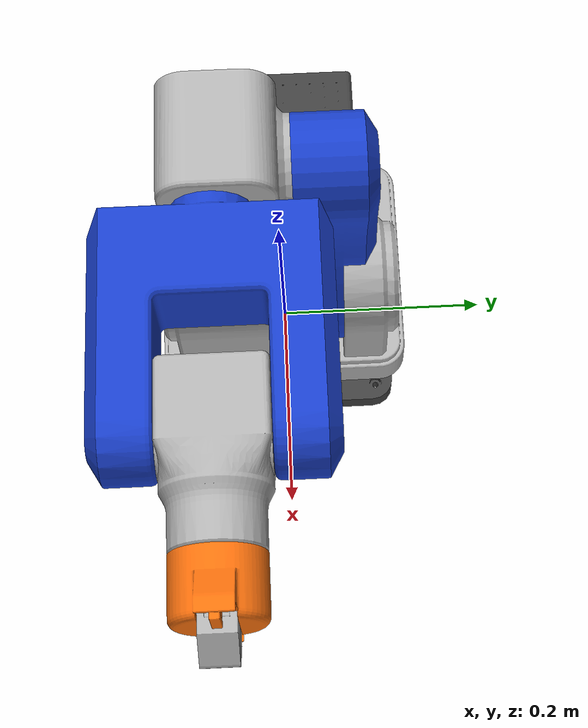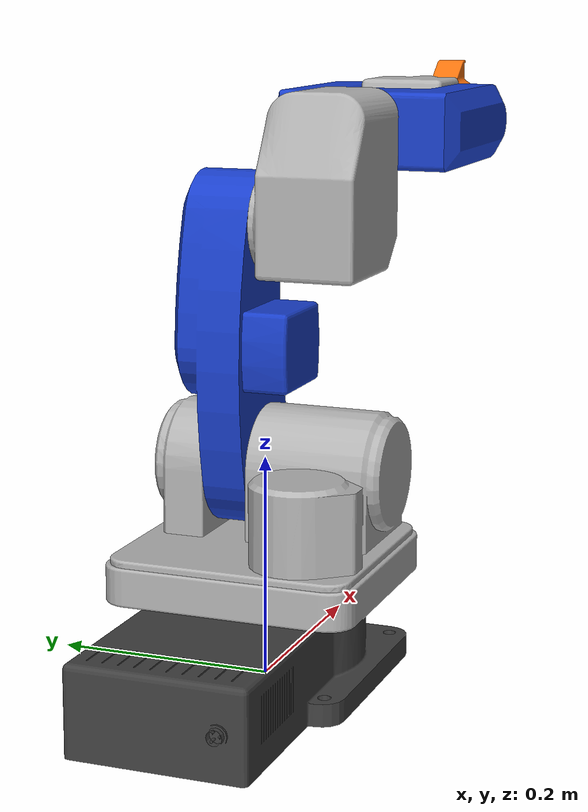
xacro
<?xml version="1.0"?>
<robot name="robot_manipulator" xmlns:xacro="http://www.ros.org/wiki/xacro">

  <xacro:include filename="$(find robot_description)/urdf/robot_materials.xacro"/>
  <xacro:include filename="$(find robot_description)/urdf/robot_arm.xacro"/>
  <xacro:include filename="$(find robot_description)/urdf/robot_gripper.xacro"/>
  <xacro:include filename="$(find robot_description)/urdf/robot_ros2_control.xacro"/>

</robot>

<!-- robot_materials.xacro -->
<robot xmlns:xacro="http://www.ros.org/wiki/xacro">

  <material name="light_gray">
    <color rgba="0.7 0.7 0.7 1.0"/>
  </material>

  <material name="dark_gray">
    <color rgba="0.25 0.25 0.25 1.0"/>
  </material>

  <material name="blue">
    <color rgba="0.1 0.25 0.8 1.0"/>
  </material>

  <material name="orange">
    <color rgba="1.0 0.45 0.05 1.0"/>
  </material>

  <material name="black">
    <color rgba="0.02 0.02 0.02 1.0"/>
  </material>

</robot>

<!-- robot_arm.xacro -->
<robot xmlns:xacro="http://www.ros.org/wiki/xacro">

  <!-- Макрос для временной инерции.
       Позже эти значения нужно заменить на реальные из SolidWorks. -->
  <xacro:macro name="default_inertial" params="mass">
    <inertial>
      <origin xyz="0 0 0" rpy="0 0 0"/>
      <mass value="${mass}"/>
      <inertia
        ixx="0.01" ixy="0.0" ixz="0.0"
        iyy="0.01" iyz="0.0"
        izz="0.01"/>
    </inertial>
  </xacro:macro>

  <!--
    Макрос звена.

    visual = STL, чтобы робот выглядел как твоя CAD-модель.
    collision = простая геометрия, чтобы Gazebo/MoveIt не зависали на тяжёлых STL.
  -->
  <xacro:macro name="robot_link" params="
    name
    visual_mesh
    material
    mass
    collision_type
    collision_xyz
    collision_rpy
    collision_size:=''
    collision_radius:='0'
    collision_length:='0'
  ">
    <link name="${name}">

      <!-- Визуальная модель: оставляем STL -->
      <visual>
        <origin xyz="0 0 0" rpy="0 0 0"/>
        <geometry>
          <mesh
            filename="package://robot_description/meshes/visual/${visual_mesh}"
            scale="0.001 0.001 0.001"/>
        </geometry>
        <material name="${material}"/>
      </visual>

      <!-- Упрощённая collision-модель -->
      <collision>
        <origin xyz="${collision_xyz}" rpy="${collision_rpy}"/>
        <geometry>
          <xacro:if value="${collision_type == 'box'}">
            <box size="${collision_size}"/>
          </xacro:if>

          <xacro:if value="${collision_type == 'cylinder'}">
            <cylinder radius="${collision_radius}" length="${collision_length}"/>
          </xacro:if>
        </geometry>
      </collision>

      <xacro:default_inertial mass="${mass}"/>

    </link>
  </xacro:macro>

  <!-- ===================== LINKS ===================== -->

  <link name="world"/>

  <joint name="world_to_base_fixed" type="fixed">
    <parent link="world"/>
    <child link="base_link"/>
    <origin xyz="0 0 0" rpy="0 0 0"/>
  </joint>

  <xacro:robot_link
    name="base_link"
    visual_mesh="base.STL"
    material="dark_gray"
    mass="2.0"
    collision_type="box"
    collision_xyz="0 0 0.035"
    collision_rpy="0 0 0"
    collision_size="0.16 0.16 0.07"/>

  <xacro:robot_link
    name="link_1"
    visual_mesh="joint_2.STL"
    material="light_gray"
    mass="1.0"
    collision_type="cylinder"
    collision_xyz="0 0 0.04"
    collision_rpy="0 0 0"
    collision_radius="0.05"
    collision_length="0.08"/>

  <xacro:robot_link
    name="link_2"
    visual_mesh="joint_3.STL"
    material="blue"
    mass="1.0"
    collision_type="cylinder"
    collision_xyz="0 0.11 0"
    collision_rpy="1.5708 0 0"
    collision_radius="0.035"
    collision_length="0.22"/>

  <xacro:robot_link
    name="link_3"
    visual_mesh="joint_4.STL"
    material="light_gray"
    mass="1.0"
    collision_type="box"
    collision_xyz="0.035 0.04 0"
    collision_rpy="0 0 0"
    collision_size="0.16 0.08 0.08"/>

  <xacro:robot_link
    name="link_4"
    visual_mesh="joint_5.STL"
    material="blue"
    mass="0.8"
    collision_type="cylinder"
    collision_xyz="0 0 0.086"
    collision_rpy="0 0 0"
    collision_radius="0.03"
    collision_length="0.172"/>

  <xacro:robot_link
    name="link_5"
    visual_mesh="joint_6.STL"
    material="light_gray"
    mass="0.8"
    collision_type="cylinder"
    collision_xyz="0 0.043 0"
    collision_rpy="1.5708 0 0"
    collision_radius="0.025"
    collision_length="0.086"/>

  <!-- gripper_base выполняет финальное вращение, поэтому это link_6 -->
  <xacro:robot_link
    name="link_6"
    visual_mesh="gripper_base.STL"
    material="orange"
    mass="0.5"
    collision_type="cylinder"
    collision_xyz="0 0 0.043"
    collision_rpy="0 0 0"
    collision_radius="0.035"
    collision_length="0.0867"/>

  <!-- Технический фрейм инструмента -->
  <link name="tool0"/>

  <!-- ===================== JOINTS ===================== -->

  <joint name="joint_1" type="revolute">
    <parent link="base_link"/>
    <child link="link_1"/>
    <origin xyz="0 0 0.1038" rpy="0 0 3.1416"/>
    <axis xyz="0 0 1"/>
    <limit lower="-3.14" upper="3.14" effort="30" velocity="1.0"/>
    <dynamics damping="0.0" friction="0.0"/>
  </joint>

  <joint name="joint_2" type="revolute">
    <parent link="link_1"/>
    <child link="link_2"/>
    <origin xyz="-0.04375 -0.0558 0.08" rpy="1.5708 0 0"/>
    <axis xyz="0 0 1"/>
    <limit lower="-0.7854" upper="1.5708" effort="30" velocity="1.0"/>
    <dynamics damping="0.0" friction="0.0"/>
  </joint>

  <joint name="joint_3" type="revolute">
    <parent link="link_2"/>
    <child link="link_3"/>
    <origin xyz="0 0.22 -0.04" rpy="0 3.1416 0"/>
    <axis xyz="0 0 1"/>
    <limit lower="-1.5708" upper="1.5708" effort="30" velocity="1.0"/>
    <dynamics damping="0.0" friction="0.0"/>
  </joint>

  <joint name="joint_4" type="revolute">
    <parent link="link_3"/>
    <child link="link_4"/>
    <origin xyz="0.07 0.075 0.06" rpy="0 1.5708 0"/>
    <axis xyz="0 0 1"/>
    <limit lower="-3.1416" upper="3.1416" effort="20" velocity="1.0"/>
    <dynamics damping="0.0" friction="0.0"/>
  </joint>

  <joint name="joint_5" type="revolute">
    <parent link="link_4"/>
    <child link="link_5"/>
    <origin xyz="0 0 0.172" rpy="1.5708 0 -1.5708"/>
    <axis xyz="0 0 1"/>
    <limit lower="-2.0944" upper="2.0944" effort="10" velocity="1.0"/>
    <dynamics damping="0.0" friction="0.0"/>
  </joint>

  <joint name="joint_6" type="revolute">
    <parent link="link_5"/>
    <child link="link_6"/>
    <origin xyz="0 0.08593 0" rpy="-1.5708 0 0"/>
    <axis xyz="0 0 1"/>
    <limit lower="-3.14" upper="3.14" effort="30" velocity="1.0"/>
    <dynamics damping="0.0" friction="0.0"/>
  </joint>

  <joint name="tool0_fixed_joint" type="fixed">
    <parent link="link_6"/>
    <child link="tool0"/>

    <!-- gripper_base.STL -> tool0: X=0 mm, Y=0 mm, Z=86.7 mm -->
    <origin xyz="0 0 0.0867" rpy="0 0 0"/>
  </joint>

</robot>

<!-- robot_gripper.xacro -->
<robot xmlns:xacro="http://www.ros.org/wiki/xacro">

  <xacro:macro name="finger_link" params="name visual_mesh material">
    <link name="${name}">

      <visual>
        <origin xyz="0 0 0" rpy="0 0 0"/>
        <geometry>
          <mesh
            filename="package://robot_description/meshes/visual/${visual_mesh}"
            scale="0.001 0.001 0.001"/>
        </geometry>
        <material name="${material}"/>
      </visual>

      <collision>
        <origin xyz="0 0 0.03" rpy="0 0 0"/>
        <geometry>
          <box size="0.015 0.015 0.06"/>
        </geometry>
      </collision>

      <inertial>
        <origin xyz="0 0 0" rpy="0 0 0"/>
        <mass value="0.1"/>
        <inertia
          ixx="0.001" ixy="0.0" ixz="0.0"
          iyy="0.001" iyz="0.0"
          izz="0.001"/>
      </inertial>

    </link>
  </xacro:macro>

  <!-- ===================== FINGER LINKS ===================== -->

  <xacro:finger_link
    name="left_finger"
    visual_mesh="left_finger.STL"
    material="light_gray"/>

  <xacro:finger_link
    name="right_finger"
    visual_mesh="right_finger.STL"
    material="light_gray"/>

  <!-- ===================== FINGER JOINTS ===================== -->

  <joint name="left_finger_joint" type="prismatic">
    <parent link="link_6"/>
    <child link="left_finger"/>

    <!-- gripper_base.STL -> left_finger.STL: X=0 mm, Y=0 mm, Z=43.5 mm -->
    <origin xyz="0 0 0.0435" rpy="1.5708 0 1.5708"/>

    <!-- направление линейного движения пальца -->
    <axis xyz="0 0 1"/>

    <!-- ход пальца: 0–25 мм -->
    <limit lower="0.0" upper="0.025" effort="5" velocity="0.05"/>
    <dynamics damping="0.0" friction="0.0"/>
  </joint>

  <joint name="right_finger_joint" type="prismatic">
    <parent link="link_6"/>
    <child link="right_finger"/>

    <!-- gripper_base.STL -> right_finger.STL: X=0 mm, Y=0 mm, Z=43.5 mm -->
    <origin xyz="0 0 0.0435" rpy="1.5708 0 -1.5708"/>

    <!-- right_finger повторяет left_finger -->
    <axis xyz="0 0 1"/>

    <limit lower="0.0" upper="0.025" effort="5" velocity="0.05"/>
    <mimic joint="left_finger_joint" multiplier="1.0" offset="0.0"/>

    <dynamics damping="0.0" friction="0.0"/>
  </joint>

</robot>
